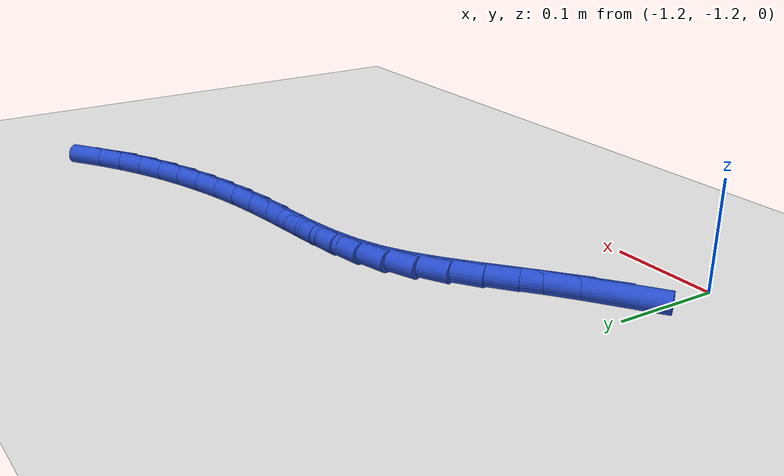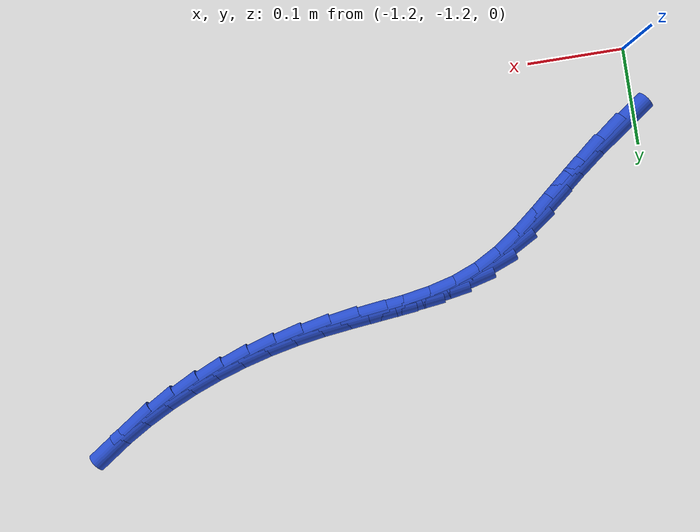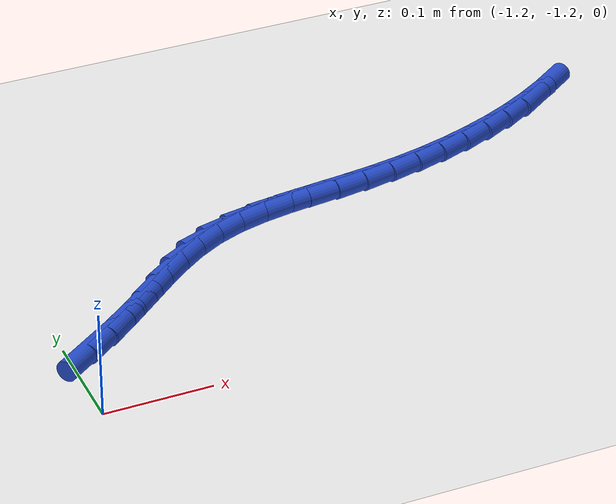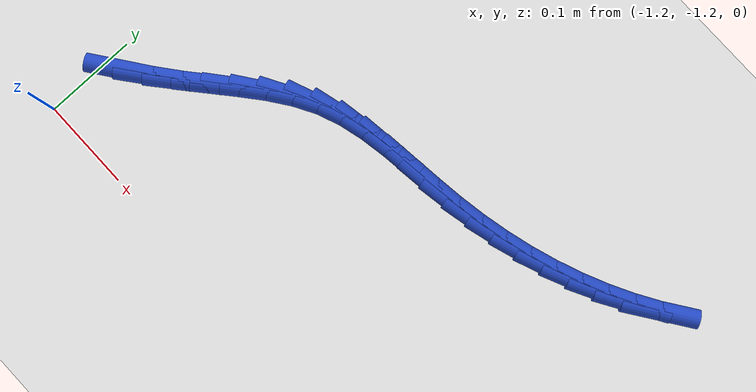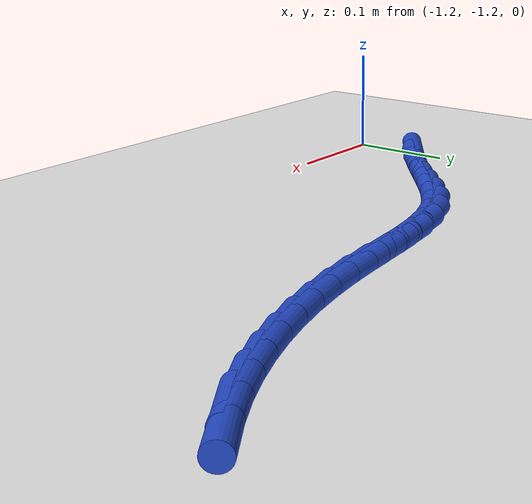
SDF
<sdf version="1.6">
 <world name="default">
  <model name="ground_plane">
   <static>1</static>
   <link name="link">
    <collision name="collision">
     <geometry><plane><normal>0 0 1</normal><size>100 100</size></plane></geometry>
     <surface><friction><ode><mu>100</mu><mu2>50</mu2></ode></friction></surface>
    </collision>
    <visual name="visual">
     <cast_shadows>0</cast_shadows>
     <geometry><plane><normal>0 0 1</normal><size>100 100</size></plane></geometry>
     <material>
      <script><uri>file://media/materials/scripts/gazebo.material</uri><name>Gazebo/WhiteGlow</name></script>
     </material>
    </visual>
   </link>
  </model>
  <model name="line">
   <link name="link_199">
    <pose>-1.179395863730483 -1.1196817800718644 0.01 0 1.57 0.6262093795704475</pose>
    <collision name="collision">
     <geometry><cylinder><radius>0.01</radius><length>0.08</length></cylinder></geometry>
    </collision>
    <visual name="visual">
     <material>
      <script><name>Gazebo/Blue</name><uri>file://media/materials/scripts/gazebo.material</uri></script>
     </material>
     <geometry><cylinder><radius>0.01</radius><length>0.08</length></cylinder></geometry>
    </visual>
   </link>
   <link name="link_200">
    <pose>-1.1545028260118222 -1.1016760246195592 0.01 0 1.57 0.6677555536264015</pose>
    <collision name="collision">
     <geometry><cylinder><radius>0.01</radius><length>0.08</length></cylinder></geometry>
    </collision>
    <visual name="visual">
     <material>
      <script><name>Gazebo/Blue</name><uri>file://media/materials/scripts/gazebo.material</uri></script>
     </material>
     <geometry><cylinder><radius>0.01</radius><length>0.08</length></cylinder></geometry>
    </visual>
   </link>
   <link name="link_201">
    <pose>-1.1305606226656972 -1.0827950248697509 0.01 0 1.57 0.703095977890408</pose>
    <collision name="collision">
     <geometry><cylinder><radius>0.01</radius><length>0.08</length></cylinder></geometry>
    </collision>
    <visual name="visual">
     <material>
      <script><name>Gazebo/Blue</name><uri>file://media/materials/scripts/gazebo.material</uri></script>
     </material>
     <geometry><cylinder><radius>0.01</radius><length>0.08</length></cylinder></geometry>
    </visual>
   </link>
   <link name="link_202">
    <pose>-1.1076147496846223 -1.0633462256193156 0.01 0 1.57 0.7116841774951504</pose>
    <collision name="collision">
     <geometry><cylinder><radius>0.01</radius><length>0.08</length></cylinder></geometry>
    </collision>
    <visual name="visual">
     <material>
      <script><name>Gazebo/Blue</name><uri>file://media/materials/scripts/gazebo.material</uri></script>
     </material>
     <geometry><cylinder><radius>0.01</radius><length>0.08</length></cylinder></geometry>
    </visual>
   </link>
   <link name="link_203">
    <pose>-1.0852534853493023 -1.0440604995378588 0.01 0 1.57 0.6849513141144705</pose>
    <collision name="collision">
     <geometry><cylinder><radius>0.01</radius><length>0.08</length></cylinder></geometry>
    </collision>
    <visual name="visual">
     <material>
      <script><name>Gazebo/Blue</name><uri>file://media/materials/scripts/gazebo.material</uri></script>
     </material>
     <geometry><cylinder><radius>0.01</radius><length>0.08</length></cylinder></geometry>
    </visual>
   </link>
   <link name="link_204">
    <pose>-1.0629122314536525 -1.0258102977245174 0.01 0 1.57 0.6201053549002085</pose>
    <collision name="collision">
     <geometry><cylinder><radius>0.01</radius><length>0.08</length></cylinder></geometry>
    </collision>
    <visual name="visual">
     <material>
      <script><name>Gazebo/Blue</name><uri>file://media/materials/scripts/gazebo.material</uri></script>
     </material>
     <geometry><cylinder><radius>0.01</radius><length>0.08</length></cylinder></geometry>
    </visual>
   </link>
   <link name="link_205">
    <pose>-1.040026281463944 -1.0094681716003162 0.01 0 1.57 0.5144168349488322</pose>
    <collision name="collision">
     <geometry><cylinder><radius>0.01</radius><length>0.08</length></cylinder></geometry>
    </collision>
    <visual name="visual">
     <material>
      <script><name>Gazebo/Blue</name><uri>file://media/materials/scripts/gazebo.material</uri></script>
     </material>
     <geometry><cylinder><radius>0.01</radius><length>0.08</length></cylinder></geometry>
    </visual>
   </link>
   <link name="link_206">
    <pose>-1.0160309288464475 -0.9959066725862802 0.01 0 1.57 0.3757326300385167</pose>
    <collision name="collision">
     <geometry><cylinder><radius>0.01</radius><length>0.08</length></cylinder></geometry>
    </collision>
    <visual name="visual">
     <material>
      <script><name>Gazebo/Blue</name><uri>file://media/materials/scripts/gazebo.material</uri></script>
     </material>
     <geometry><cylinder><radius>0.01</radius><length>0.08</length></cylinder></geometry>
    </visual>
   </link>
   <link name="link_207">
    <pose>-0.9904551575812438 -0.9858177222560737 0.01 0 1.57 0.2552532220832357</pose>
    <collision name="collision">
     <geometry><cylinder><radius>0.01</radius><length>0.08</length></cylinder></geometry>
    </collision>
    <visual name="visual">
     <material>
      <script><name>Gazebo/Blue</name><uri>file://media/materials/scripts/gazebo.material</uri></script>
     </material>
     <geometry><cylinder><radius>0.01</radius><length>0.08</length></cylinder></geometry>
    </visual>
   </link>
   <link name="link_208">
    <pose>-0.963414874256636 -0.9787616896192447 0.01 0 1.57 0.17226757889626754</pose>
    <collision name="collision">
     <geometry><cylinder><radius>0.01</radius><length>0.08</length></cylinder></geometry>
    </collision>
    <visual name="visual">
     <material>
      <script><name>Gazebo/Blue</name><uri>file://media/materials/scripts/gazebo.material</uri></script>
     </material>
     <geometry><cylinder><radius>0.01</radius><length>0.08</length></cylinder></geometry>
    </visual>
   </link>
   <link name="link_209">
    <pose>-0.9352527753396968 -0.9738617060236072 0.01 0 1.57 0.12449622990974324</pose>
    <collision name="collision">
     <geometry><cylinder><radius>0.01</radius><length>0.08</length></cylinder></geometry>
    </collision>
    <visual name="visual">
     <material>
      <script><name>Gazebo/Blue</name><uri>file://media/materials/scripts/gazebo.material</uri></script>
     </material>
     <geometry><cylinder><radius>0.01</radius><length>0.08</length></cylinder></geometry>
    </visual>
   </link>
   <link name="link_210">
    <pose>-0.9063120446192061 -0.9702399632891413 0.01 0 1.57 0.10922083084070353</pose>
    <collision name="collision">
     <geometry><cylinder><radius>0.01</radius><length>0.08</length></cylinder></geometry>
    </collision>
    <visual name="visual">
     <material>
      <script><name>Gazebo/Blue</name><uri>file://media/materials/scripts/gazebo.material</uri></script>
     </material>
     <geometry><cylinder><radius>0.01</radius><length>0.08</length></cylinder></geometry>
    </visual>
   </link>
   <link name="link_211">
    <pose>-0.8769358658839439 -0.9670186532358269 0.01 0 1.57 0.12486050029758665</pose>
    <collision name="collision">
     <geometry><cylinder><radius>0.01</radius><length>0.08</length></cylinder></geometry>
    </collision>
    <visual name="visual">
     <material>
      <script><name>Gazebo/Blue</name><uri>file://media/materials/scripts/gazebo.material</uri></script>
     </material>
     <geometry><cylinder><radius>0.01</radius><length>0.08</length></cylinder></geometry>
    </visual>
   </link>
   <link name="link_212">
    <pose>-0.8474674229226898 -0.9633199676836445 0.01 0 1.57 0.166408590016935</pose>
    <collision name="collision">
     <geometry><cylinder><radius>0.01</radius><length>0.08</length></cylinder></geometry>
    </collision>
    <visual name="visual">
     <material>
      <script><name>Gazebo/Blue</name><uri>file://media/materials/scripts/gazebo.material</uri></script>
     </material>
     <geometry><cylinder><radius>0.01</radius><length>0.08</length></cylinder></geometry>
    </visual>
   </link>
   <link name="link_213">
    <pose>-0.8182108229599664 -0.9584059750439378 0.01 0 1.57 0.21432105659716072</pose>
    <collision name="collision">
     <geometry><cylinder><radius>0.01</radius><length>0.08</length></cylinder></geometry>
    </collision>
    <visual name="visual">
     <material>
      <script><name>Gazebo/Blue</name><uri>file://media/materials/scripts/gazebo.material</uri></script>
     </material>
     <geometry><cylinder><radius>0.01</radius><length>0.08</length></cylinder></geometry>
    </visual>
   </link>
   <link name="link_214">
    <pose>-0.7893091535140977 -0.9521151221296513 0.01 0 1.57 0.2637329669738899</pose>
    <collision name="collision">
     <geometry><cylinder><radius>0.01</radius><length>0.08</length></cylinder></geometry>
    </collision>
    <visual name="visual">
     <material>
      <script><name>Gazebo/Blue</name><uri>file://media/materials/scripts/gazebo.material</uri></script>
     </material>
     <geometry><cylinder><radius>0.01</radius><length>0.08</length></cylinder></geometry>
    </visual>
   </link>
   <link name="link_215">
    <pose>-0.7608640334972866 -0.9444342947831861 0.01 0 1.57 0.31490171119492527</pose>
    <collision name="collision">
     <geometry><cylinder><radius>0.01</radius><length>0.08</length></cylinder></geometry>
    </collision>
    <visual name="visual">
     <material>
      <script><name>Gazebo/Blue</name><uri>file://media/materials/scripts/gazebo.material</uri></script>
     </material>
     <geometry><cylinder><radius>0.01</radius><length>0.08</length></cylinder></geometry>
    </visual>
   </link>
   <link name="link_216">
    <pose>-0.7329770817826394 -0.9353503789868869 0.01 0 1.57 0.3680736032295147</pose>
    <collision name="collision">
     <geometry><cylinder><radius>0.01</radius><length>0.08</length></cylinder></geometry>
    </collision>
    <visual name="visual">
     <material>
      <script><name>Gazebo/Blue</name><uri>file://media/materials/scripts/gazebo.material</uri></script>
     </material>
     <geometry><cylinder><radius>0.01</radius><length>0.08</length></cylinder></geometry>
    </visual>
   </link>
   <link name="link_217">
    <pose>-0.7057499172432633 -0.9248502607230998 0.01 0 1.57 0.42347726667565994</pose>
    <collision name="collision">
     <geometry><cylinder><radius>0.01</radius><length>0.08</length></cylinder></geometry>
    </collision>
    <visual name="visual">
     <material>
      <script><name>Gazebo/Blue</name><uri>file://media/materials/scripts/gazebo.material</uri></script>
     </material>
     <geometry><cylinder><radius>0.01</radius><length>0.08</length></cylinder></geometry>
    </visual>
   </link>
   <link name="link_218">
    <pose>-0.6792841587522658 -0.9129208259741708 0.01 0 1.57 0.4813144617615326</pose>
    <collision name="collision">
     <geometry><cylinder><radius>0.01</radius><length>0.08</length></cylinder></geometry>
    </collision>
    <visual name="visual">
     <material>
      <script><name>Gazebo/Blue</name><uri>file://media/materials/scripts/gazebo.material</uri></script>
     </material>
     <geometry><cylinder><radius>0.01</radius><length>0.08</length></cylinder></geometry>
    </visual>
   </link>
   <link name="link_219">
    <pose>-0.6536814251827539 -0.8995489607224453 0.01 0 1.57 0.5417481568378539</pose>
    <collision name="collision">
     <geometry><cylinder><radius>0.01</radius><length>0.08</length></cylinder></geometry>
    </collision>
    <visual name="visual">
     <material>
      <script><name>Gazebo/Blue</name><uri>file://media/materials/scripts/gazebo.material</uri></script>
     </material>
     <geometry><cylinder><radius>0.01</radius><length>0.08</length></cylinder></geometry>
    </visual>
   </link>
   <link name="link_220">
    <pose>-0.6290433354078339 -0.8847215509502686 0.01 0 1.57 0.6048879499416857</pose>
    <collision name="collision">
     <geometry><cylinder><radius>0.01</radius><length>0.08</length></cylinder></geometry>
    </collision>
    <visual name="visual">
     <material>
      <script><name>Gazebo/Blue</name><uri>file://media/materials/scripts/gazebo.material</uri></script>
     </material>
     <geometry><cylinder><radius>0.01</radius><length>0.08</length></cylinder></geometry>
    </visual>
   </link>
  </model>
 </world>
</sdf>
